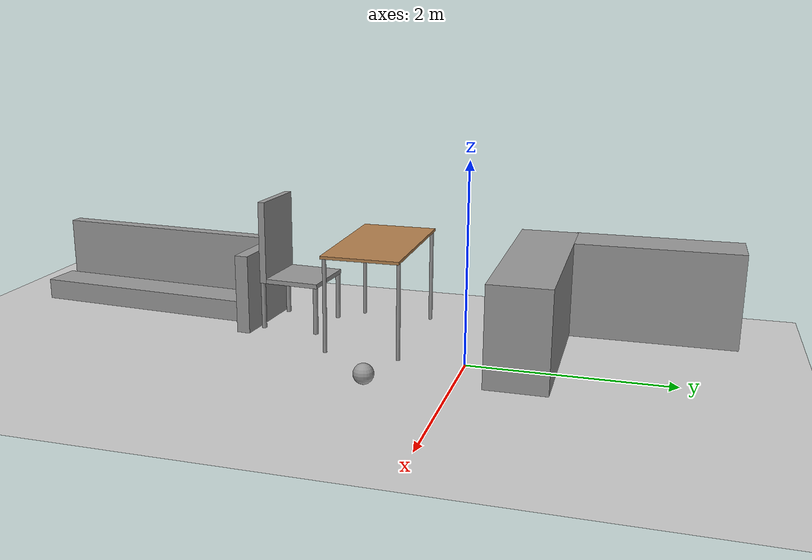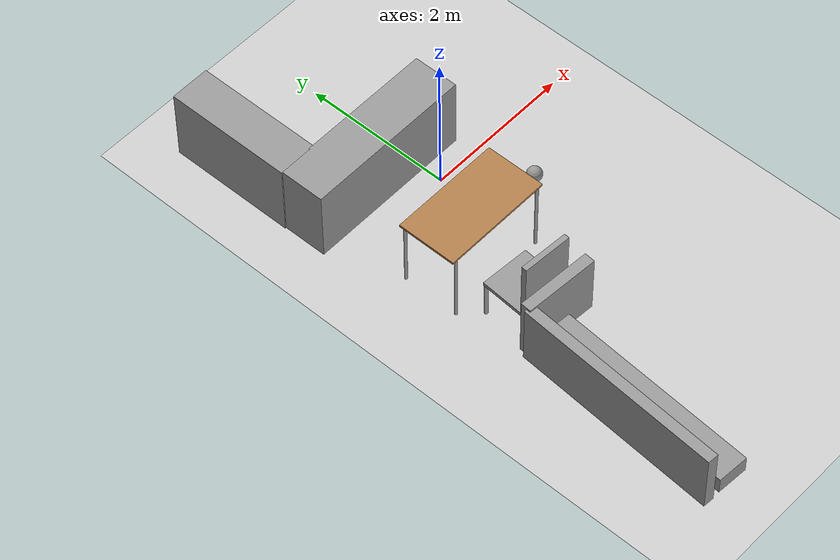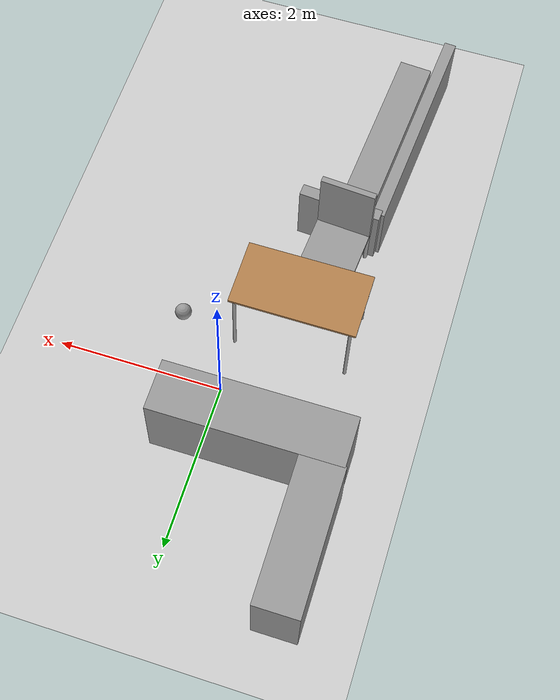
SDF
<sdf version="1.6">
 <world name="default">
  <model name="ground_plane">
   <static>1</static>
   <link name="link">
    <collision name="collision">
     <geometry><plane><normal>0 0 1</normal><size>100 100</size></plane></geometry>
     <surface>
      <contact><collide_bitmask>65535</collide_bitmask></contact>
      <friction><ode><mu>100</mu><mu2>50</mu2></ode></friction>
     </surface>
    </collision>
    <visual name="visual">
     <cast_shadows>0</cast_shadows>
     <geometry><plane><normal>0 0 1</normal><size>100 100</size></plane></geometry>
     <material>
      <script><uri>file://media/materials/scripts/gazebo.material</uri><name>Gazebo/Grey</name></script>
     </material>
    </visual>
   </link>
  </model>
  <model name="couch">
   <link name="link_0">
    <pose>-1.19145 -4.17235 0.583935 0 -0 0</pose>
    <inertial>
     <mass>0.33429</mass>
     <inertia>
      <ixx>0.232533</ixx>
      <ixy>0</ixy>
      <ixz>0</ixz>
      <iyy>0.0199772</iyy>
      <iyz>0</iyz>
      <izz>0.213725</izz>
     </inertia>
    </inertial>
    <visual name="visual">
     <geometry><box><size>0.14485 2.76606 0.834351</size></box></geometry>
     <material>
      <lighting>1</lighting>
      <script><uri>file://media/materials/scripts/gazebo.material</uri><name>Gazebo/Grey</name></script>
      <shader type="pixel"><normal_map>__default__</normal_map></shader>
      <ambient>0.3 0.3 0.3 1</ambient>
      <diffuse>0.7 0.7 0.7 1</diffuse>
      <specular>0.01 0.01 0.01 1</specular>
      <emissive>0 0 0 1</emissive>
     </material>
    </visual>
    <collision name="collision">
     <geometry><box><size>0.14485 2.76606 0.834351</size></box></geometry>
     <surface>
      <friction>
       <ode><mu>1</mu><mu2>1</mu2><fdir1>0 0 0</fdir1><slip1>0</slip1><slip2>0</slip2></ode>
       <torsional>
        <coefficient>1</coefficient>
        <patch_radius>0</patch_radius>
        <surface_radius>0</surface_radius>
        <use_patch_radius>1</use_patch_radius>
        <ode><slip>0</slip></ode>
       </torsional>
      </friction>
      <bounce><restitution_coefficient>0</restitution_coefficient><threshold>1e+06</threshold></bounce>
      <contact>
       <collide_without_contact>0</collide_without_contact>
       <collide_without_contact_bitmask>1</collide_without_contact_bitmask>
       <collide_bitmask>1</collide_bitmask>
       <ode>
        <soft_cfm>0</soft_cfm>
        <soft_erp>0.2</soft_erp>
        <kp>1e+13</kp>
        <kd>1</kd>
        <max_vel>0.01</max_vel>
        <min_depth>0</min_depth>
       </ode>
       <bullet>
        <split_impulse>1</split_impulse>
        <split_impulse_penetration_threshold>-0.01</split_impulse_penetration_threshold>
        <soft_cfm>0</soft_cfm>
        <soft_erp>0.2</soft_erp>
        <kp>1e+13</kp>
        <kd>1</kd>
       </bullet>
      </contact>
     </surface>
    </collision>
   </link>
   <link name="link_2">
    <pose>-0.806417 -4.15963 0.280513 0 -0 0</pose>
    <inertial>
     <mass>0.174926</mass>
     <inertia>
      <ixx>0.112278</ixx>
      <ixy>0</ixy>
      <ixz>0</ixz>
      <iyy>0.00327316</iyy>
      <iyz>0</iyz>
      <izz>0.114057</izz>
     </inertia>
    </inertial>
    <visual name="visual">
     <geometry><box><size>0.416255 2.76606 0.226434</size></box></geometry>
     <material>
      <lighting>1</lighting>
      <script><uri>file://media/materials/scripts/gazebo.material</uri><name>Gazebo/Grey</name></script>
      <shader type="pixel"><normal_map>__default__</normal_map></shader>
      <ambient>0.3 0.3 0.3 1</ambient>
      <diffuse>0.7 0.7 0.7 1</diffuse>
      <specular>0.01 0.01 0.01 1</specular>
      <emissive>0 0 0 1</emissive>
     </material>
    </visual>
    <collision name="collision">
     <geometry><box><size>0.416255 2.76606 0.226434</size></box></geometry>
     <surface>
      <friction>
       <ode><mu>1</mu><mu2>1</mu2><fdir1>0 0 0</fdir1><slip1>0</slip1><slip2>0</slip2></ode>
       <torsional>
        <coefficient>1</coefficient>
        <patch_radius>0</patch_radius>
        <surface_radius>0</surface_radius>
        <use_patch_radius>1</use_patch_radius>
        <ode><slip>0</slip></ode>
       </torsional>
      </friction>
      <bounce><restitution_coefficient>0</restitution_coefficient><threshold>1e+06</threshold></bounce>
      <contact>
       <collide_without_contact>0</collide_without_contact>
       <collide_without_contact_bitmask>1</collide_without_contact_bitmask>
       <collide_bitmask>1</collide_bitmask>
       <ode>
        <soft_cfm>0</soft_cfm>
        <soft_erp>0.2</soft_erp>
        <kp>1e+13</kp>
        <kd>1</kd>
        <max_vel>0.01</max_vel>
        <min_depth>0</min_depth>
       </ode>
       <bullet>
        <split_impulse>1</split_impulse>
        <split_impulse_penetration_threshold>-0.01</split_impulse_penetration_threshold>
        <soft_cfm>0</soft_cfm>
        <soft_erp>0.2</soft_erp>
        <kp>1e+13</kp>
        <kd>1</kd>
       </bullet>
      </contact>
     </surface>
    </collision>
   </link>
   <link name="link_3">
    <pose>-0.724044 -2.77007 0.606187 0 -0 0</pose>
    <inertial>
     <mass>0.172557</mass>
     <inertia>
      <ixx>0.00921711</ixx>
      <ixy>0</ixy>
      <ixz>0</ixz>
      <iyy>0.0232951</iyy>
      <iyz>0</iyz>
      <izz>0.0146814</izz>
     </inertia>
    </inertial>
    <visual name="visual">
     <geometry><box><size>1 0.14485 0.834351</size></box></geometry>
     <material>
      <lighting>1</lighting>
      <script><uri>file://media/materials/scripts/gazebo.material</uri><name>Gazebo/Grey</name></script>
      <shader type="pixel"><normal_map>__default__</normal_map></shader>
      <ambient>0.3 0.3 0.3 1</ambient>
      <diffuse>0.7 0.7 0.7 1</diffuse>
      <specular>0.01 0.01 0.01 1</specular>
      <emissive>0 0 0 1</emissive>
     </material>
    </visual>
    <collision name="collision">
     <geometry><box><size>1 0.14485 0.834351</size></box></geometry>
     <surface>
      <friction>
       <ode><mu>1</mu><mu2>1</mu2><fdir1>0 0 0</fdir1><slip1>0</slip1><slip2>0</slip2></ode>
       <torsional>
        <coefficient>1</coefficient>
        <patch_radius>0</patch_radius>
        <surface_radius>0</surface_radius>
        <use_patch_radius>1</use_patch_radius>
        <ode><slip>0</slip></ode>
       </torsional>
      </friction>
      <bounce><restitution_coefficient>0</restitution_coefficient><threshold>1e+06</threshold></bounce>
      <contact>
       <collide_without_contact>0</collide_without_contact>
       <collide_without_contact_bitmask>1</collide_without_contact_bitmask>
       <collide_bitmask>1</collide_bitmask>
       <ode>
        <soft_cfm>0</soft_cfm>
        <soft_erp>0.2</soft_erp>
        <kp>1e+13</kp>
        <kd>1</kd>
        <max_vel>0.01</max_vel>
        <min_depth>0</min_depth>
       </ode>
       <bullet>
        <split_impulse>1</split_impulse>
        <split_impulse_penetration_threshold>-0.01</split_impulse_penetration_threshold>
        <soft_cfm>0</soft_cfm>
        <soft_erp>0.2</soft_erp>
        <kp>1e+13</kp>
        <kd>1</kd>
       </bullet>
      </contact>
     </surface>
    </collision>
   </link>
   <joint name="link_0_JOINT_0" type="fixed">
    <parent>link_0</parent>
    <child>link_2</child>
    <physics>
     <ode><limit><cfm>0</cfm><erp>0.2</erp></limit><suspension><cfm>0</cfm><erp>0.2</erp></suspension></ode>
    </physics>
   </joint>
   <joint name="link_0_JOINT_1" type="fixed">
    <parent>link_0</parent>
    <child>link_3</child>
    <physics>
     <ode><limit><cfm>0</cfm><erp>0.2</erp></limit><suspension><cfm>0</cfm><erp>0.2</erp></suspension></ode>
    </physics>
   </joint>
   <static>0</static>
   <pose>0.199472 0.315029 -0.16791 -0 0.001025 -0.072501</pose>
  </model>
  <model name="Counter_Top">
   <link name="link_4">
    <pose>0.154773 0.032272 0 0 -0 0</pose>
    <inertial>
     <mass>1.37733</mass>
     <inertia>
      <ixx>0.157254</ixx>
      <ixy>0</ixy>
      <ixz>0</ixz>
      <iyy>0.703133</iyy>
      <iyz>0</iyz>
      <izz>0.630831</izz>
     </inertia>
    </inertial>
    <visual name="visual">
     <geometry><box><size>2.26408 0.608339 1</size></box></geometry>
     <material>
      <lighting>1</lighting>
      <script><uri>file://media/materials/scripts/gazebo.material</uri><name>Gazebo/Grey</name></script>
      <shader type="pixel"><normal_map>__default__</normal_map></shader>
      <ambient>0.3 0.3 0.3 1</ambient>
      <diffuse>0.7 0.7 0.7 1</diffuse>
      <specular>0.01 0.01 0.01 1</specular>
      <emissive>0 0 0 1</emissive>
     </material>
    </visual>
    <collision name="collision">
     <geometry><box><size>2.26408 0.608339 1</size></box></geometry>
     <surface>
      <friction>
       <ode><mu>1</mu><mu2>1</mu2><fdir1>0 0 0</fdir1><slip1>0</slip1><slip2>0</slip2></ode>
       <torsional>
        <coefficient>1</coefficient>
        <patch_radius>0</patch_radius>
        <surface_radius>0</surface_radius>
        <use_patch_radius>1</use_patch_radius>
        <ode><slip>0</slip></ode>
       </torsional>
      </friction>
      <bounce><restitution_coefficient>0</restitution_coefficient><threshold>1e+06</threshold></bounce>
      <contact>
       <collide_without_contact>0</collide_without_contact>
       <collide_without_contact_bitmask>1</collide_without_contact_bitmask>
       <collide_bitmask>1</collide_bitmask>
       <ode>
        <soft_cfm>0</soft_cfm>
        <soft_erp>0.2</soft_erp>
        <kp>1e+13</kp>
        <kd>1</kd>
        <max_vel>0.01</max_vel>
        <min_depth>0</min_depth>
       </ode>
       <bullet>
        <split_impulse>1</split_impulse>
        <split_impulse_penetration_threshold>-0.01</split_impulse_penetration_threshold>
        <soft_cfm>0</soft_cfm>
        <soft_erp>0.2</soft_erp>
        <kp>1e+13</kp>
        <kd>1</kd>
       </bullet>
      </contact>
     </surface>
    </collision>
   </link>
   <link name="link_5">
    <pose>-0.726732 1.17428 0 0 -0 0</pose>
    <inertial>
     <mass>0.9068</mass>
     <inertia>
      <ixx>0.295862</ixx>
      <ixy>0</ixy>
      <ixz>0</ixz>
      <iyy>0.0968837</iyy>
      <iyz>0</iyz>
      <izz>0.241613</izz>
     </inertia>
    </inertial>
    <visual name="visual">
     <geometry><box><size>0.531127 1.70741 1</size></box></geometry>
     <material>
      <lighting>1</lighting>
      <script><uri>file://media/materials/scripts/gazebo.material</uri><name>Gazebo/Grey</name></script>
      <shader type="pixel"/>
      <ambient>0.3 0.3 0.3 1</ambient>
      <diffuse>0.7 0.7 0.7 1</diffuse>
      <specular>0.01 0.01 0.01 1</specular>
      <emissive>0 0 0 1</emissive>
     </material>
    </visual>
    <collision name="collision">
     <geometry><box><size>0.531127 1.70741 1</size></box></geometry>
     <surface>
      <friction>
       <ode><mu>1</mu><mu2>1</mu2><fdir1>0 0 0</fdir1><slip1>0</slip1><slip2>0</slip2></ode>
       <torsional>
        <coefficient>1</coefficient>
        <patch_radius>0</patch_radius>
        <surface_radius>0</surface_radius>
        <use_patch_radius>1</use_patch_radius>
        <ode><slip>0</slip></ode>
       </torsional>
      </friction>
      <bounce><restitution_coefficient>0</restitution_coefficient><threshold>1e+06</threshold></bounce>
      <contact>
       <collide_without_contact>0</collide_without_contact>
       <collide_without_contact_bitmask>1</collide_without_contact_bitmask>
       <collide_bitmask>1</collide_bitmask>
       <ode>
        <soft_cfm>0</soft_cfm>
        <soft_erp>0.2</soft_erp>
        <kp>1e+13</kp>
        <kd>1</kd>
        <max_vel>0.01</max_vel>
        <min_depth>0</min_depth>
       </ode>
       <bullet>
        <split_impulse>1</split_impulse>
        <split_impulse_penetration_threshold>-0.01</split_impulse_penetration_threshold>
        <soft_cfm>0</soft_cfm>
        <soft_erp>0.2</soft_erp>
        <kp>1e+13</kp>
        <kd>1</kd>
       </bullet>
      </contact>
     </surface>
    </collision>
   </link>
   <joint name="link_4_JOINT_2" type="fixed">
    <parent>link_4</parent>
    <child>link_5</child>
    <physics>
     <ode><limit><cfm>0</cfm><erp>0.2</erp></limit><suspension><cfm>0</cfm><erp>0.2</erp></suspension></ode>
    </physics>
   </joint>
   <static>0</static>
   <pose>-0.719322 0.539812 0.499995 5e-06 -4e-06 0.003689</pose>
  </model>
  <model name="table">
   <static>1</static>
   <link name="link">
    <collision name="surface">
     <pose>0 0 1 0 -0 0</pose>
     <geometry><box><size>1.5 0.8 0.03</size></box></geometry>
     <surface><friction><ode><mu>0.6</mu><mu2>0.6</mu2></ode></friction></surface>
    </collision>
    <visual name="visual1">
     <pose>0 0 1 0 -0 0</pose>
     <geometry><box><size>1.5 0.8 0.03</size></box></geometry>
     <material>
      <script><uri>file://media/materials/scripts/gazebo.material</uri><name>Gazebo/Wood</name></script>
     </material>
    </visual>
    <collision name="front_left_leg">
     <pose>0.68 0.38 0.5 0 -0 0</pose>
     <geometry><cylinder><radius>0.02</radius><length>1</length></cylinder></geometry>
    </collision>
    <visual name="front_left_leg">
     <pose>0.68 0.38 0.5 0 -0 0</pose>
     <geometry><cylinder><radius>0.02</radius><length>1</length></cylinder></geometry>
     <material>
      <script><uri>file://media/materials/scripts/gazebo.material</uri><name>Gazebo/Grey</name></script>
     </material>
    </visual>
    <collision name="front_right_leg">
     <pose>0.68 -0.38 0.5 0 -0 0</pose>
     <geometry><cylinder><radius>0.02</radius><length>1</length></cylinder></geometry>
    </collision>
    <visual name="front_right_leg">
     <pose>0.68 -0.38 0.5 0 -0 0</pose>
     <geometry><cylinder><radius>0.02</radius><length>1</length></cylinder></geometry>
     <material>
      <script><uri>file://media/materials/scripts/gazebo.material</uri><name>Gazebo/Grey</name></script>
     </material>
    </visual>
    <collision name="back_right_leg">
     <pose>-0.68 -0.38 0.5 0 -0 0</pose>
     <geometry><cylinder><radius>0.02</radius><length>1</length></cylinder></geometry>
    </collision>
    <visual name="back_right_leg">
     <pose>-0.68 -0.38 0.5 0 -0 0</pose>
     <geometry><cylinder><radius>0.02</radius><length>1</length></cylinder></geometry>
     <material>
      <script><uri>file://media/materials/scripts/gazebo.material</uri><name>Gazebo/Grey</name></script>
     </material>
    </visual>
    <collision name="back_left_leg">
     <pose>-0.68 0.38 0.5 0 -0 0</pose>
     <geometry><cylinder><radius>0.02</radius><length>1</length></cylinder></geometry>
    </collision>
    <visual name="back_left_leg">
     <pose>-0.68 0.38 0.5 0 -0 0</pose>
     <geometry><cylinder><radius>0.02</radius><length>1</length></cylinder></geometry>
     <material>
      <script><uri>file://media/materials/scripts/gazebo.material</uri><name>Gazebo/Grey</name></script>
     </material>
    </visual>
   </link>
   <pose>-0.635873 -1.04074 0 0 -0 0</pose>
  </model>
  <model name="chair2_clone_clone">
   <link name="link_12">
    <pose>0.315657 -2.84973 0.453284 0 -0 0</pose>
    <inertial>
     <mass>0.0218595</mass>
     <inertia>
      <ixx>0.00079758</ixx>
      <ixy>0</ixy>
      <ixz>0</ixz>
      <iyy>0.00079758</iyy>
      <iyz>0</iyz>
      <izz>0.001587</izz>
     </inertia>
    </inertial>
    <visual name="visual">
     <geometry><box><size>0.66 0.66 0.047346</size></box></geometry>
     <material>
      <lighting>1</lighting>
      <script><uri>file://media/materials/scripts/gazebo.material</uri><name>Gazebo/Grey</name></script>
      <shader type="pixel"><normal_map>__default__</normal_map></shader>
      <ambient>0.3 0.3 0.3 1</ambient>
      <diffuse>0.7 0.7 0.7 1</diffuse>
      <specular>0.01 0.01 0.01 1</specular>
      <emissive>0 0 0 1</emissive>
     </material>
    </visual>
    <collision name="collision">
     <geometry><box><size>0.66 0.66 0.047346</size></box></geometry>
     <surface>
      <friction>
       <ode><mu>1</mu><mu2>1</mu2><fdir1>0 0 0</fdir1><slip1>0</slip1><slip2>0</slip2></ode>
       <torsional>
        <coefficient>1</coefficient>
        <patch_radius>0</patch_radius>
        <surface_radius>0</surface_radius>
        <use_patch_radius>1</use_patch_radius>
        <ode><slip>0</slip></ode>
       </torsional>
      </friction>
      <bounce><restitution_coefficient>0</restitution_coefficient><threshold>1e+06</threshold></bounce>
      <contact>
       <collide_without_contact>0</collide_without_contact>
       <collide_without_contact_bitmask>1</collide_without_contact_bitmask>
       <collide_bitmask>1</collide_bitmask>
       <ode>
        <soft_cfm>0</soft_cfm>
        <soft_erp>0.2</soft_erp>
        <kp>1e+13</kp>
        <kd>1</kd>
        <max_vel>0.01</max_vel>
        <min_depth>0</min_depth>
       </ode>
       <bullet>
        <split_impulse>1</split_impulse>
        <split_impulse_penetration_threshold>-0.01</split_impulse_penetration_threshold>
        <soft_cfm>0</soft_cfm>
        <soft_erp>0.2</soft_erp>
        <kp>1e+13</kp>
        <kd>1</kd>
       </bullet>
      </contact>
     </surface>
    </collision>
   </link>
   <link name="link_13">
    <pose>0.011338 -3.15405 0.177779 0 -0 0</pose>
    <inertial>
     <mass>0.00133056</mass>
     <inertia>
      <ixx>2.83472e-05</ixx>
      <ixy>0</ixy>
      <ixz>0</ixz>
      <iyy>2.83472e-05</iyy>
      <iyz>0</iyz>
      <izz>4.38741e-07</izz>
     </inertia>
    </inertial>
    <visual name="visual">
     <geometry><cylinder><radius>0.0256804</radius><length>0.503665</length></cylinder></geometry>
     <material>
      <lighting>1</lighting>
      <script><uri>file://media/materials/scripts/gazebo.material</uri><name>Gazebo/Grey</name></script>
      <shader type="pixel"/>
      <ambient>0.3 0.3 0.3 1</ambient>
      <diffuse>0.7 0.7 0.7 1</diffuse>
      <specular>0.01 0.01 0.01 1</specular>
      <emissive>0 0 0 1</emissive>
     </material>
    </visual>
    <collision name="collision">
     <geometry><cylinder><radius>0.02568</radius><length>0.503665</length></cylinder></geometry>
     <surface>
      <friction>
       <ode><mu>1</mu><mu2>1</mu2><fdir1>0 0 0</fdir1><slip1>0</slip1><slip2>0</slip2></ode>
       <torsional>
        <coefficient>1</coefficient>
        <patch_radius>0</patch_radius>
        <surface_radius>0</surface_radius>
        <use_patch_radius>1</use_patch_radius>
        <ode><slip>0</slip></ode>
       </torsional>
      </friction>
      <bounce><restitution_coefficient>0</restitution_coefficient><threshold>1e+06</threshold></bounce>
      <contact>
       <collide_without_contact>0</collide_without_contact>
       <collide_without_contact_bitmask>1</collide_without_contact_bitmask>
       <collide_bitmask>1</collide_bitmask>
       <ode>
        <soft_cfm>0</soft_cfm>
        <soft_erp>0.2</soft_erp>
        <kp>1e+13</kp>
        <kd>1</kd>
        <max_vel>0.01</max_vel>
        <min_depth>0</min_depth>
       </ode>
       <bullet>
        <split_impulse>1</split_impulse>
        <split_impulse_penetration_threshold>-0.01</split_impulse_penetration_threshold>
        <soft_cfm>0</soft_cfm>
        <soft_erp>0.2</soft_erp>
        <kp>1e+13</kp>
        <kd>1</kd>
       </bullet>
      </contact>
     </surface>
    </collision>
   </link>
   <link name="link_13_clone">
    <pose>0.619977 -3.15405 0.177779 0 -0 0</pose>
    <inertial>
     <mass>0.00133056</mass>
     <inertia>
      <ixx>2.83472e-05</ixx>
      <ixy>0</ixy>
      <ixz>0</ixz>
      <iyy>2.83472e-05</iyy>
      <iyz>0</iyz>
      <izz>4.38741e-07</izz>
     </inertia>
    </inertial>
    <visual name="visual">
     <geometry><cylinder><radius>0.0256804</radius><length>0.503665</length></cylinder></geometry>
     <material>
      <lighting>1</lighting>
      <script><uri>file://media/materials/scripts/gazebo.material</uri><name>Gazebo/Grey</name></script>
      <shader type="pixel"/>
      <ambient>0.3 0.3 0.3 1</ambient>
      <diffuse>0.7 0.7 0.7 1</diffuse>
      <specular>0.01 0.01 0.01 1</specular>
      <emissive>0 0 0 1</emissive>
     </material>
    </visual>
    <collision name="collision">
     <geometry><cylinder><radius>0.02568</radius><length>0.503665</length></cylinder></geometry>
     <surface>
      <friction>
       <ode><mu>1</mu><mu2>1</mu2><fdir1>0 0 0</fdir1><slip1>0</slip1><slip2>0</slip2></ode>
       <torsional>
        <coefficient>1</coefficient>
        <patch_radius>0</patch_radius>
        <surface_radius>0</surface_radius>
        <use_patch_radius>1</use_patch_radius>
        <ode><slip>0</slip></ode>
       </torsional>
      </friction>
      <bounce><restitution_coefficient>0</restitution_coefficient><threshold>1e+06</threshold></bounce>
      <contact>
       <collide_without_contact>0</collide_without_contact>
       <collide_without_contact_bitmask>1</collide_without_contact_bitmask>
       <collide_bitmask>1</collide_bitmask>
       <ode>
        <soft_cfm>0</soft_cfm>
        <soft_erp>0.2</soft_erp>
        <kp>1e+13</kp>
        <kd>1</kd>
        <max_vel>0.01</max_vel>
        <min_depth>0</min_depth>
       </ode>
       <bullet>
        <split_impulse>1</split_impulse>
        <split_impulse_penetration_threshold>-0.01</split_impulse_penetration_threshold>
        <soft_cfm>0</soft_cfm>
        <soft_erp>0.2</soft_erp>
        <kp>1e+13</kp>
        <kd>1</kd>
       </bullet>
      </contact>
     </surface>
    </collision>
   </link>
   <link name="link_13_clone_0">
    <pose>0.619977 -2.54541 0.177779 0 -0 0</pose>
    <inertial>
     <mass>0.00133056</mass>
     <inertia>
      <ixx>2.83472e-05</ixx>
      <ixy>0</ixy>
      <ixz>0</ixz>
      <iyy>2.83472e-05</iyy>
      <iyz>0</iyz>
      <izz>4.38741e-07</izz>
     </inertia>
    </inertial>
    <visual name="visual">
     <geometry><cylinder><radius>0.0256804</radius><length>0.503665</length></cylinder></geometry>
     <material>
      <lighting>1</lighting>
      <script><uri>file://media/materials/scripts/gazebo.material</uri><name>Gazebo/Grey</name></script>
      <shader type="pixel"/>
      <ambient>0.3 0.3 0.3 1</ambient>
      <diffuse>0.7 0.7 0.7 1</diffuse>
      <specular>0.01 0.01 0.01 1</specular>
      <emissive>0 0 0 1</emissive>
     </material>
    </visual>
    <collision name="collision">
     <geometry><cylinder><radius>0.02568</radius><length>0.503665</length></cylinder></geometry>
     <surface>
      <friction>
       <ode><mu>1</mu><mu2>1</mu2><fdir1>0 0 0</fdir1><slip1>0</slip1><slip2>0</slip2></ode>
       <torsional>
        <coefficient>1</coefficient>
        <patch_radius>0</patch_radius>
        <surface_radius>0</surface_radius>
        <use_patch_radius>1</use_patch_radius>
        <ode><slip>0</slip></ode>
       </torsional>
      </friction>
      <bounce><restitution_coefficient>0</restitution_coefficient><threshold>1e+06</threshold></bounce>
      <contact>
       <collide_without_contact>0</collide_without_contact>
       <collide_without_contact_bitmask>1</collide_without_contact_bitmask>
       <collide_bitmask>1</collide_bitmask>
       <ode>
        <soft_cfm>0</soft_cfm>
        <soft_erp>0.2</soft_erp>
        <kp>1e+13</kp>
        <kd>1</kd>
        <max_vel>0.01</max_vel>
        <min_depth>0</min_depth>
       </ode>
       <bullet>
        <split_impulse>1</split_impulse>
        <split_impulse_penetration_threshold>-0.01</split_impulse_penetration_threshold>
        <soft_cfm>0</soft_cfm>
        <soft_erp>0.2</soft_erp>
        <kp>1e+13</kp>
        <kd>1</kd>
       </bullet>
      </contact>
     </surface>
    </collision>
   </link>
   <link name="link_13_clone_0_clone">
    <pose>0.011338 -2.54541 0.177779 0 -0 0</pose>
    <inertial>
     <mass>0.00133056</mass>
     <inertia>
      <ixx>2.83472e-05</ixx>
      <ixy>0</ixy>
      <ixz>0</ixz>
      <iyy>2.83472e-05</iyy>
      <iyz>0</iyz>
      <izz>4.38741e-07</izz>
     </inertia>
    </inertial>
    <visual name="visual">
     <geometry><cylinder><radius>0.0256804</radius><length>0.503665</length></cylinder></geometry>
     <material>
      <lighting>1</lighting>
      <script><uri>file://media/materials/scripts/gazebo.material</uri><name>Gazebo/Grey</name></script>
      <shader type="pixel"/>
      <ambient>0.3 0.3 0.3 1</ambient>
      <diffuse>0.7 0.7 0.7 1</diffuse>
      <specular>0.01 0.01 0.01 1</specular>
      <emissive>0 0 0 1</emissive>
     </material>
    </visual>
    <collision name="collision">
     <geometry><cylinder><radius>0.02568</radius><length>0.503665</length></cylinder></geometry>
     <surface>
      <friction>
       <ode><mu>1</mu><mu2>1</mu2><fdir1>0 0 0</fdir1><slip1>0</slip1><slip2>0</slip2></ode>
       <torsional>
        <coefficient>1</coefficient>
        <patch_radius>0</patch_radius>
        <surface_radius>0</surface_radius>
        <use_patch_radius>1</use_patch_radius>
        <ode><slip>0</slip></ode>
       </torsional>
      </friction>
      <bounce><restitution_coefficient>0</restitution_coefficient><threshold>1e+06</threshold></bounce>
      <contact>
       <collide_without_contact>0</collide_without_contact>
       <collide_without_contact_bitmask>1</collide_without_contact_bitmask>
       <collide_bitmask>1</collide_bitmask>
       <ode>
        <soft_cfm>0</soft_cfm>
        <soft_erp>0.2</soft_erp>
        <kp>1e+13</kp>
        <kd>1</kd>
        <max_vel>0.01</max_vel>
        <min_depth>0</min_depth>
       </ode>
       <bullet>
        <split_impulse>1</split_impulse>
        <split_impulse_penetration_threshold>-0.01</split_impulse_penetration_threshold>
        <soft_cfm>0</soft_cfm>
        <soft_erp>0.2</soft_erp>
        <kp>1e+13</kp>
        <kd>1</kd>
       </bullet>
      </contact>
     </surface>
    </collision>
   </link>
   <link name="link_14">
    <pose>0.315657 -3.14339 0.868122 0 -0 0</pose>
    <inertial>
     <mass>0.0453051</mass>
     <inertia>
      <ixx>0.00292386</ixx>
      <ixy>0</ixy>
      <ixz>0</ixz>
      <iyy>0.0045485</iyy>
      <iyz>0</iyz>
      <izz>0.00166451</izz>
     </inertia>
    </inertial>
    <visual name="visual">
     <geometry><box><size>0.66 0.072671 0.877021</size></box></geometry>
     <material>
      <lighting>1</lighting>
      <script><uri>file://media/materials/scripts/gazebo.material</uri><name>Gazebo/Grey</name></script>
      <shader type="pixel"><normal_map>__default__</normal_map></shader>
      <ambient>0.3 0.3 0.3 1</ambient>
      <diffuse>0.7 0.7 0.7 1</diffuse>
      <specular>0.01 0.01 0.01 1</specular>
      <emissive>0 0 0 1</emissive>
     </material>
    </visual>
    <collision name="collision">
     <geometry><box><size>0.66 0.072671 0.877021</size></box></geometry>
     <surface>
      <friction>
       <ode><mu>1</mu><mu2>1</mu2><fdir1>0 0 0</fdir1><slip1>0</slip1><slip2>0</slip2></ode>
       <torsional>
        <coefficient>1</coefficient>
        <patch_radius>0</patch_radius>
        <surface_radius>0</surface_radius>
        <use_patch_radius>1</use_patch_radius>
        <ode><slip>0</slip></ode>
       </torsional>
      </friction>
      <bounce><restitution_coefficient>0</restitution_coefficient><threshold>1e+06</threshold></bounce>
      <contact>
       <collide_without_contact>0</collide_without_contact>
       <collide_without_contact_bitmask>1</collide_without_contact_bitmask>
       <collide_bitmask>1</collide_bitmask>
       <ode>
        <soft_cfm>0</soft_cfm>
        <soft_erp>0.2</soft_erp>
        <kp>1e+13</kp>
        <kd>1</kd>
        <max_vel>0.01</max_vel>
        <min_depth>0</min_depth>
       </ode>
       <bullet>
        <split_impulse>1</split_impulse>
        <split_impulse_penetration_threshold>-0.01</split_impulse_penetration_threshold>
        <soft_cfm>0</soft_cfm>
        <soft_erp>0.2</soft_erp>
        <kp>1e+13</kp>
        <kd>1</kd>
       </bullet>
      </contact>
     </surface>
    </collision>
   </link>
   <joint name="link_12_JOINT_4" type="fixed">
    <parent>link_12</parent>
    <child>link_13</child>
    <physics>
     <ode><limit><cfm>0</cfm><erp>0.2</erp></limit><suspension><cfm>0</cfm><erp>0.2</erp></suspension></ode>
    </physics>
   </joint>
   <joint name="link_12_JOINT_5" type="fixed">
    <parent>link_12</parent>
    <child>link_13_clone</child>
    <physics>
     <ode><limit><cfm>0</cfm><erp>0.2</erp></limit><suspension><cfm>0</cfm><erp>0.2</erp></suspension></ode>
    </physics>
   </joint>
   <joint name="link_12_JOINT_6" type="fixed">
    <parent>link_12</parent>
    <child>link_13_clone_0</child>
    <physics>
     <ode><limit><cfm>0</cfm><erp>0.2</erp></limit><suspension><cfm>0</cfm><erp>0.2</erp></suspension></ode>
    </physics>
   </joint>
   <joint name="link_12_JOINT_7" type="fixed">
    <parent>link_12</parent>
    <child>link_13_clone_0_clone</child>
    <physics>
     <ode><limit><cfm>0</cfm><erp>0.2</erp></limit><suspension><cfm>0</cfm><erp>0.2</erp></suspension></ode>
    </physics>
   </joint>
   <joint name="link_12_JOINT_8" type="fixed">
    <parent>link_12</parent>
    <child>link_14</child>
    <physics>
     <ode><limit><cfm>0</cfm><erp>0.2</erp></limit><suspension><cfm>0</cfm><erp>0.2</erp></suspension></ode>
    </physics>
   </joint>
   <static>0</static>
   <pose>-0.902854 0.878588 0.074492 0.000177 -4e-06 -0.072499</pose>
  </model>
  <model name="my_ball">
   <link name="link_0">
    <inertial>
     <mass>1</mass>
     <inertia><ixx>0.1</ixx><ixy>0</ixy><ixz>0</ixz><iyy>0.1</iyy><iyz>0</iyz><izz>0.1</izz></inertia>
    </inertial>
    <visual name="visual">
     <geometry><sphere><radius>0.1</radius></sphere></geometry>
     <material>
      <lighting>1</lighting>
      <script><uri>file://media/materials/scripts/gazebo.material</uri><name>Gazebo/Grey</name></script>
      <ambient>1 1 1 1</ambient>
      <diffuse>1 1 1 1</diffuse>
      <specular>1 1 1 1</specular>
      <emissive>1 1 1 1</emissive>
      <shader type="vertex"><normal_map>__default__</normal_map></shader>
     </material>
    </visual>
    <collision name="collision">
     <geometry><sphere><radius>0.1</radius></sphere></geometry>
     <surface>
      <friction>
       <ode><mu>1</mu><mu2>1</mu2><fdir1>0 0 0</fdir1><slip1>0</slip1><slip2>0</slip2></ode>
       <torsional>
        <coefficient>1</coefficient>
        <patch_radius>0</patch_radius>
        <surface_radius>0</surface_radius>
        <use_patch_radius>1</use_patch_radius>
        <ode><slip>0</slip></ode>
       </torsional>
      </friction>
      <bounce><restitution_coefficient>0</restitution_coefficient><threshold>1e+06</threshold></bounce>
      <contact>
       <collide_without_contact>0</collide_without_contact>
       <collide_without_contact_bitmask>1</collide_without_contact_bitmask>
       <collide_bitmask>1</collide_bitmask>
       <ode>
        <soft_cfm>0</soft_cfm>
        <soft_erp>0.2</soft_erp>
        <kp>1e+13</kp>
        <kd>1</kd>
        <max_vel>0.01</max_vel>
        <min_depth>0</min_depth>
       </ode>
       <bullet>
        <split_impulse>1</split_impulse>
        <split_impulse_penetration_threshold>-0.01</split_impulse_penetration_threshold>
        <soft_cfm>0</soft_cfm>
        <soft_erp>0.2</soft_erp>
        <kp>1e+13</kp>
        <kd>1</kd>
       </bullet>
      </contact>
     </surface>
    </collision>
   </link>
   <static>0</static>
   <pose>0.740726 -0.800964 0.1 0 -0 0</pose>
  </model>
 </world>
</sdf>
